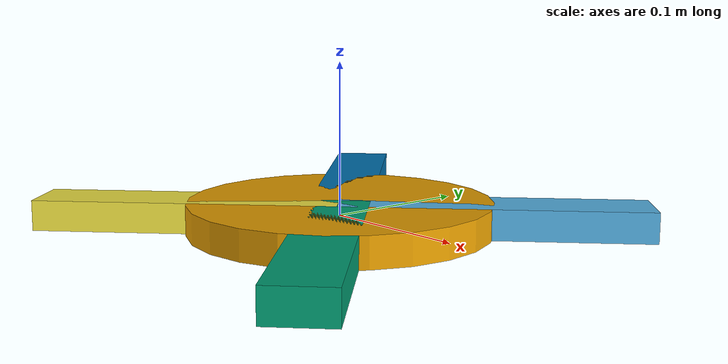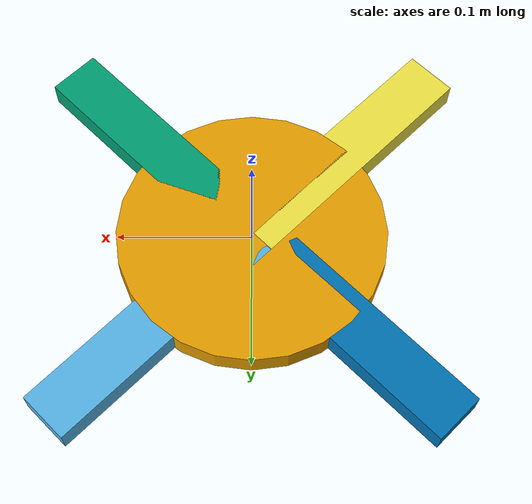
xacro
<?xml version='1.0'?>

<robot name="rodrone" xmlns:xacro="http://www.ros.org/wiki/xacro">
  <xacro:include filename="$(find rodrone_description)/urdf/rodrone.gazebo" />
  <xacro:include filename="$(find rodrone_description)/urdf/materials.xacro" />
  <xacro:include filename="$(find rodrone_description)/urdf/macros.xacro" />

  <link name='center_frame'>
    <pose>0 0 0.1 0 0 0</pose>

    <inertial>
      <mass value="15.0"/>
      <origin xyz="0.0 0 0.1" rpy=" 0 0 0"/>
      <inertia
          ixx="0.1" ixy="0" ixz="0"
          iyy="0.1" iyz="0"
          izz="0.1"
      />
    </inertial>

    <collision name='collision'>
      <geometry>
        <cylinder length="0.02" radius="0.1"/>
      </geometry>
    </collision>

    <visual name='center_frame_visual'>
      <origin xyz="0 0 0" rpy=" 0 0 0"/>
      <geometry>
        <cylinder length="0.02" radius="0.1"/>
      </geometry>
    </visual>
  </link>

  <link name="pos_pos_arm">
    <collision name="collision">
      <origin xyz="0 0 0" rpy="0 0 0"/>
      <geometry>
        <box size="0.2 0.04 0.02"/>
      </geometry>
    </collision>
    <visual name="pos_pos_arm_visual">
      <origin xyz="0 0 0" rpy="0 0 0"/>
      <geometry>
        <box size="0.2 0.04 0.02"/>
      </geometry>
    </visual>
    <inertial>
      <origin xyz="0 0 0" rpy="0 0 0"/>
      <mass value="5"/>
      <inertia
        ixx=".1" ixy="0.0" ixz="0.0"
        iyy=".1" iyz="0.0"
        izz=".1"/>
    </inertial>
  </link>

  <link name="neg_pos_arm">
    <collision name="collision">
      <origin xyz="0 0 0" rpy="0 0 0"/>
      <geometry>
        <box size="0.2 0.04 0.02"/>
      </geometry>
    </collision>
    <visual name="neg_pos_arm_visual">
      <origin xyz="0 0 0" rpy="0 0 0"/>
      <geometry>
        <box size="0.2 0.04 0.02"/>
      </geometry>
    </visual>
    <inertial>
      <origin xyz="0 0 0" rpy="0 0 0"/>
      <mass value="5"/>
      <inertia
        ixx=".1" ixy="0.0" ixz="0.0"
        iyy=".1" iyz="0.0"
        izz=".1"/>
    </inertial>
  </link>

  <link name="neg_neg_arm">
    <collision name="collision">
      <origin xyz="0 0 0" rpy="0 0 0"/>
      <geometry>
        <box size="0.2 0.04 0.02"/>
      </geometry>
    </collision>
    <visual name="neg_neg_arm_visual">
      <origin xyz="0 0 0" rpy="0 0 0"/>
      <geometry>
        <box size="0.2 0.04 0.02"/>
      </geometry>
    </visual>
    <inertial>
      <origin xyz="0 0 0" rpy="0 0 0"/>
      <mass value="5"/>
      <inertia
        ixx=".1" ixy="0.0" ixz="0.0"
        iyy=".1" iyz="0.0"
        izz=".1"/>
    </inertial>
  </link>

  <link name="pos_neg_arm">
    <collision name="collision">
      <origin xyz="0 0 0" rpy="0 0 0"/>
      <geometry>
        <box size="0.2 0.04 0.02"/>
      </geometry>
    </collision>
    <visual name="pos_neg_arm_visual">
      <origin xyz="0 0 0" rpy="0 0 0"/>
      <geometry>
        <box size="0.2 0.04 0.02"/>
      </geometry>
    </visual>
    <inertial>
      <origin xyz="0 0 0" rpy="0 0 0"/>
      <mass value="5"/>
      <inertia
        ixx=".1" ixy="0.0" ixz="0.0"
        iyy=".1" iyz="0.0"
        izz=".1"/>
    </inertial>
  </link>

  <joint type="fixed" name="pos_pos_arm_joint">
    <origin xyz="0.0708 0.0708 0" rpy="0 0 0.78539816339"/>
    <child link="pos_pos_arm"/>
    <parent link="center_frame"/>
  </joint>

  <joint type="fixed" name="pos_neg_arm_joint">
    <origin xyz="-0.0708 0.0708 0" rpy="0 0 2.35619449019"/>
    <child link="pos_neg_arm"/>
    <parent link="center_frame"/>
  </joint>

  <joint type="fixed" name="neg_neg_arm_joint">
    <origin xyz="-0.0708 -0.0708 0" rpy="0 0 -2.35619449019"/>
    <child link="neg_neg_arm"/>
    <parent link="center_frame"/>
  </joint>

  <joint type="fixed" name="neg_pos_arm_joint">
    <origin xyz="0.0708 -0.0708 0" rpy="0 0 -0.78539816339"/>
    <child link="neg_pos_arm"/>
    <parent link="center_frame"/>
  </joint>

</robot>
